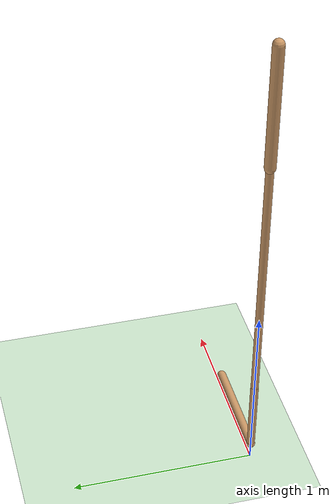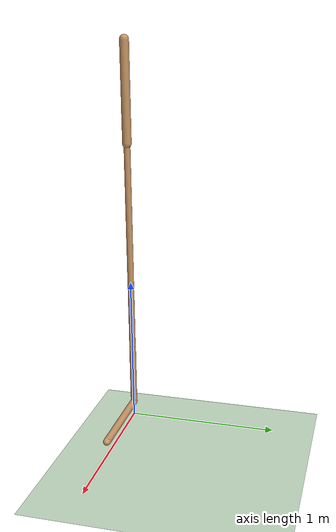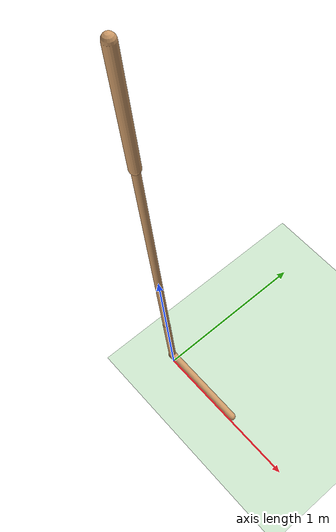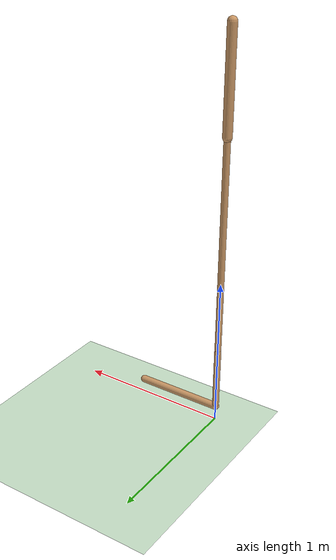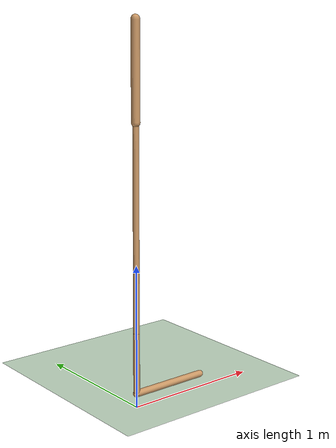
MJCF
<mujoco model="walker2d">
  <compiler angle="degree" inertiafromgeom="true" />
  <default>
    <joint armature="0.01" damping=".1" limited="true" />
    <geom conaffinity="0" condim="3" contype="1" density="1000" friction=".7 .1 .1" rgba="0.8 0.6 .4 1" />
  </default>
  <option integrator="RK4" timestep="0.002" />
  <worldbody>
    <light cutoff="100" diffuse="1 1 1" dir="-0 0 -1.3" directional="true" exponent="1" pos="0 0 1.3" specular=".1 .1 .1" />
    <geom conaffinity="1" condim="3" name="floor" pos="0 0 0" rgba="0.8 0.9 0.8 1" size="40 40 40" type="plane" material="MatPlane" />
    <body name="torso" pos="0 0 2.2685377657413484">
      <camera name="track" mode="trackcom" pos="0 -5 -1.25" xyaxes="1 0 0 0 0 1" />
      <joint armature="0" axis="1 0 0" damping="0" limited="false" name="rootx" pos="0 0 -1.25" stiffness="0" type="slide" />
      <joint armature="0" axis="0 0 1" damping="0" limited="false" name="rootz" pos="0 0 -1.25" ref="1.25" stiffness="0" type="slide" />
      <joint armature="0" axis="0 1 0" damping="0" limited="false" name="rooty" pos="0 0 0" stiffness="0" type="hinge" />
      <geom friction="0.9" name="torso_geom" size="0.029579028487205505 0.32383784651756287" type="capsule" />
      <body name="thigh" pos="0 0 -0.32383784651756287">
        <joint axis="0 -1 0" name="thigh_joint" pos="0 0 0" range="-150 0" type="hinge" />
        <site name="torso_thigh_site" pos="0 0 0" size="0.01" type="sphere" rgba="1 0 0 0.5" />
        <geom friction="0.9" pos="0 0 -0.7086765170097351" name="thigh_geom" size="0.021091286092996597 0.7086765170097351" type="capsule" />
        <body name="leg" pos="0 0 -1.6310264766216278">
          <joint axis="0 -1 0" name="leg_joint" pos="0 0 0.2136734426021576" range="-150 0" type="hinge" />
          <site name="thigh_leg_site" pos="0 0 0.25" size="0.01" type="sphere" rgba="1 0 0 0.5" />
          <geom friction="0.9" name="leg_geom" size="0.022064533084630966 0.2136734426021576" type="capsule" />
          <body name="foot" pos="0.5659624338150024 0 -0.31367344260215757">
            <joint axis="0 -1 0" name="foot_joint" pos="-0.5659624338150024 0 0.1" range="-45 45" type="hinge" />
            <site name="leg_foot_site" pos="-0.2 0 0.1" size="0.01" type="sphere" rgba="1 0 0 0.5" />
            <geom friction="0.9" pos="-0.2829812169075012 0 0.1" quat="0.70710678118654757 0 -0.70710678118654746 0" name="foot_geom" size="0.02471531555056572 0.2829812169075012" type="capsule" />
          </body>
        </body>
      </body>

      <body name="thigh_left" pos="0 0 -0.32383784651756287">
        <joint axis="0 -1 0" name="thigh_left_joint" pos="0 0 0" range="-150 0" type="hinge" />
        <site name="torso_thigh_left_site" pos="0 0 0" size="0.01" type="sphere" rgba="1 0 0 0.5" />
        <geom friction="0.9" name="thigh_left_geom" rgba=".7 .3 .6 1" size="0.021091286092996597 0.7086765170097351" pos="0 0 -0.7086765170097351" type="capsule" />
        <body name="leg_left" pos="0 0 -1.6310264766216278">
          <joint axis="0 -1 0" name="leg_left_joint" pos="0 0 0.2136734426021576" range="-150 0" type="hinge" />
          <site name="thigh_leg_left_site" pos="0 0 0.25" size="0.01" type="sphere" rgba="1 0 0 0.5" />
          <geom friction="0.9" name="leg_left_geom" rgba=".7 .3 .6 1" size="0.022064533084630966 0.2136734426021576" type="capsule" />
          <body name="foot_left" pos="0.5659624338150024 0 -0.31367344260215757">
            <joint axis="0 -1 0" name="foot_left_joint" pos="-0.5659624338150024 0 0.1" range="-45 45" type="hinge" />
            <site name="leg_foot_left_site" pos="-0.2 0 0.1" size="0.01" type="sphere" rgba="1 0 0 0.5" />
            <geom friction="1.9" name="foot_left_geom" rgba=".7 .3 .6 1" size="0.02471531555056572 0.2829812169075012" pos="-0.2829812169075012 0 0.1" type="capsule" quat="0.70710678118654757 0 -0.70710678118654746 0" />
          </body>
        </body>
      </body>
    </body>
  </worldbody>
  <actuator>

    <motor ctrllimited="true" ctrlrange="-1.0 1.0" gear="56.04432471962355" joint="thigh_joint" />
    <motor ctrllimited="true" ctrlrange="-1.0 1.0" gear="26.00638808654277" joint="leg_joint" />
    <motor ctrllimited="true" ctrlrange="-1.0 1.0" gear="48.01616034717987" joint="foot_joint" />
    <motor ctrllimited="true" ctrlrange="-1.0 1.0" gear="56.04432471962355" joint="thigh_left_joint" />
    <motor ctrllimited="true" ctrlrange="-1.0 1.0" gear="26.00638808654277" joint="leg_left_joint" />
    <motor ctrllimited="true" ctrlrange="-1.0 1.0" gear="48.01616034717987" joint="foot_left_joint" />

  </actuator>
    <asset>
        <texture type="skybox" builtin="gradient" rgb1=".4 .5 .6" rgb2="0 0 0" width="100" height="100" />
        <texture builtin="flat" height="1278" mark="cross" markrgb="1 1 1" name="texgeom" random="0.01" rgb1="0.8 0.6 0.4" rgb2="0.8 0.6 0.4" type="cube" width="127" />
        <texture builtin="checker" height="100" name="texplane" rgb1="0 0 0" rgb2="0.8 0.8 0.8" type="2d" width="100" />
        <material name="MatPlane" reflectance="0.5" shininess="1" specular="1" texrepeat="60 60" texture="texplane" />
        <material name="geom" texture="texgeom" texuniform="true" />
    </asset>

  <sensor>
    <force site="torso_thigh_site" name="torso_thigh_sensor" />
    <force site="thigh_leg_site" name="thigh_leg_sensor" />
    <force site="leg_foot_site" name="leg_foot_sensor" />
    <force site="torso_thigh_left_site" name="torso_thigh_left_sensor" />
    <force site="thigh_leg_left_site" name="thigh_leg_left_sensor" />
    <force site="leg_foot_left_site" name="leg_foot_left_sensor" />
  </sensor>
</mujoco>
